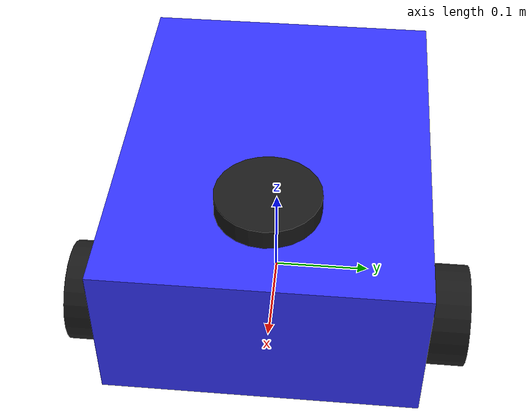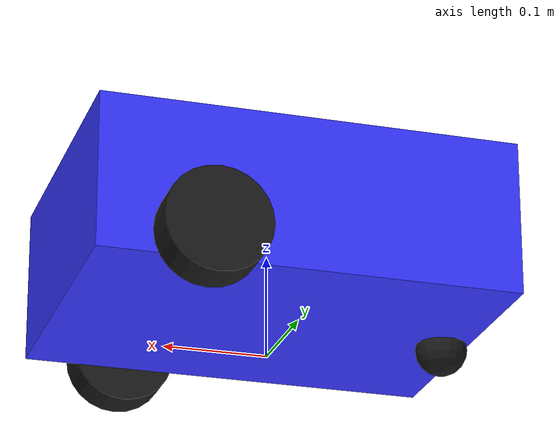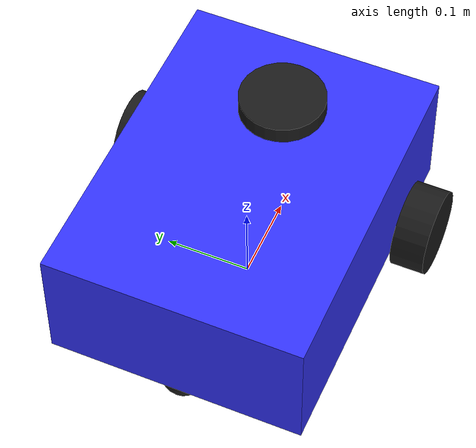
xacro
<?xml version="1.0"?>
<robot xmlns:xacro="http://www.ros.org/wiki/xacro" name="mobile_robot">

  <xacro:arg name="extra_controllers" default=""/>

  <!-- ==================== PROPERTIES ==================== -->
  <!-- Chassis dimensions (meters) -->
  <xacro:property name="base_width"  value="0.3"/>
  <xacro:property name="base_length" value="0.4"/>
  <xacro:property name="base_height" value="0.15"/>

  <!-- Wheel dimensions and placement -->
  <xacro:property name="wheel_radius" value="0.05"/>
  <xacro:property name="wheel_width"  value="0.04"/>
  <xacro:property name="wheel_ygap"   value="0.175"/> <!-- distance from center -->
  <xacro:property name="wheel_zoff"   value="0.05"/>  <!-- wheel axis height = wheel_radius (touch ground) -->
  <xacro:property name="wheel_xoff"   value="0.1"/>   <!-- forward offset -->

  <!-- Caster derived size -->
  <xacro:property name="caster_radius" value="${wheel_radius/2}"/>

  <!-- ==================== MATERIALS ==================== -->
  <material name="blue">
    <color rgba="0.2 0.2 1 1"/>
  </material>
  <material name="black">
    <color rgba="0.1 0.1 0.1 1"/>
  </material>

  <!-- ==================== LINKS ==================== -->
  <!-- base_link: root reference frame. KDL requires no inertia on root link. -->
  <link name="base_link"/>

  <!-- chassis: main body box -->
  <link name="chassis">
    <visual>
      <!-- Lift visual so bottom sits at base_link z=0 -->
      <origin xyz="0 0 ${base_height/2}" rpy="0 0 0"/>
      <geometry>
        <box size="${base_length} ${base_width} ${base_height}"/>
      </geometry>
      <material name="blue"/>
    </visual>
    <collision>
      <origin xyz="0 0 ${base_height/2}" rpy="0 0 0"/>
      <geometry>
        <box size="${base_length} ${base_width} ${base_height}"/>
      </geometry>
    </collision>
    <inertial>
      <origin xyz="0 0 ${base_height/2}" rpy="0 0 0"/>
      <mass value="2.0"/>
      <inertia ixx="0.02" ixy="0" ixz="0" iyy="0.02" iyz="0" izz="0.02"/>
    </inertial>
  </link>

  <!-- caster_wheel: small sphere at rear, slides on ground -->
  <link name="caster_wheel">
    <visual>
      <geometry>
        <sphere radius="${caster_radius}"/>
      </geometry>
      <material name="black"/>
    </visual>
    <collision>
      <geometry>
        <sphere radius="${caster_radius}"/>
      </geometry>
    </collision>
    <inertial>
      <mass value="0.1"/>
      <inertia ixx="0.0001" ixy="0" ixz="0" iyy="0.0001" iyz="0" izz="0.0001"/>
    </inertial>
  </link>

  <!-- ==================== JOINTS ==================== -->
  <joint name="chassis_joint" type="fixed">
    <parent link="base_link"/>
    <child link="chassis"/>
    <!-- Raise chassis to give 3cm of ground clearance -->
    <origin xyz="0 0 0.03" rpy="0 0 0"/>
  </joint>

  <!-- caster fixed at rear edge of chassis, dropped to compensate for ground clearance -->
  <joint name="caster_wheel_joint" type="fixed">
    <parent link="chassis"/>
    <child link="caster_wheel"/>
    <origin xyz="${-base_length/2 + caster_radius} 0 ${caster_radius - 0.03}" rpy="0 0 0"/>
  </joint>

  <!-- ==================== WHEEL MACRO ==================== -->
  <!-- Reusable wheel template (params: prefix=left|right, y_reflect=±1) -->
  <xacro:macro name="wheel" params="prefix y_reflect">
    <link name="${prefix}_wheel">
      <visual>
        <!-- Rotate cylinder to lie flat (cylinder default along Z, rotate to Y) -->
        <origin xyz="0 0 0" rpy="${pi/2} 0 0"/>
        <geometry>
          <cylinder radius="${wheel_radius}" length="${wheel_width}"/>
        </geometry>
        <material name="black"/>
      </visual>
      <collision>
        <origin xyz="0 0 0" rpy="${pi/2} 0 0"/>
        <geometry>
          <sphere radius="${wheel_radius}"/>
        </geometry>
      </collision>
      <inertial>
        <mass value="0.5"/>
        <inertia ixx="0.001" ixy="0" ixz="0" iyy="0.001" iyz="0" izz="0.001"/>
      </inertial>
    </link>

    <!-- Continuous joint: unlimited rotation around Y-axis -->
    <joint name="${prefix}_wheel_joint" type="continuous">
      <parent link="base_link"/>
      <child link="${prefix}_wheel"/>
      <origin xyz="${wheel_xoff} ${y_reflect * wheel_ygap} ${wheel_zoff}" rpy="0 0 0"/>
      <axis xyz="0 1 0"/>
      <dynamics damping="0.0" friction="0.0"/>
      <limit effort="10" velocity="10"/>
    </joint>
  </xacro:macro>

  <!-- Instantiate left and right wheels -->
  <xacro:wheel prefix="left"  y_reflect="1" />
  <xacro:wheel prefix="right" y_reflect="-1" />

  <!-- ==================== LIDAR SENSOR ==================== -->
  <!-- Physical representation of the LiDAR puck mounted on top of chassis -->
  <link name="laser_frame">
    <visual>
      <geometry>
        <cylinder radius="0.05" length="0.04"/>
      </geometry>
      <material name="black"/>
    </visual>
  </link>

  <!-- Fixed joint: LiDAR sits on top of chassis near the front -->
  <joint name="laser_joint" type="fixed">
    <parent link="chassis"/>
    <child link="laser_frame"/>
    <!-- x=0.1 (front), z=base_height (top surface of chassis) -->
    <origin xyz="0.1 0 ${base_height}" rpy="0 0 0"/>
  </joint>

  <!-- ==================== ROS2 CONTROL ==================== -->
  <!-- Hardware interface: Gazebo plugin handles joint control and state publishing -->
  <ros2_control name="GazeboSystem" type="system">
    <hardware>
      <plugin>gz_ros2_control/GazeboSimSystem</plugin>
    </hardware>

    <!-- Left wheel: velocity control + odometry feedback -->
    <joint name="left_wheel_joint">
      <command_interface name="velocity">
        <param name="min">-10</param>
        <param name="max">10</param>
      </command_interface>
      <state_interface name="velocity"/>
      <state_interface name="position"/>
    </joint>

    <!-- Right wheel: velocity control + odometry feedback -->
    <joint name="right_wheel_joint">
      <command_interface name="velocity">
        <param name="min">-10</param>
        <param name="max">10</param>
      </command_interface>
      <state_interface name="velocity"/>
      <state_interface name="position"/>
    </joint>
  </ros2_control>

  <!-- ==================== GAZEBO MATERIALS & FRICTION ==================== -->

  <gazebo reference="chassis">
    <visual>
      <material>
        <ambient>0.2 0.2 1 1</ambient>
        <diffuse>0.2 0.2 1 1</diffuse>
      </material>
    </visual>
  </gazebo>

  <gazebo reference="caster_wheel">
    <visual>
      <material>
        <ambient>0.1 0.1 0.1 1</ambient>
        <diffuse>0.1 0.1 0.1 1</diffuse>
      </material>
    </visual>
    <!-- Low friction so caster slides without resistance -->
    <mu1>0.001</mu1>
    <mu2>0.001</mu2>
  </gazebo>

  <gazebo reference="left_wheel">
    <visual>
      <material>
        <ambient>0.1 0.1 0.1 1</ambient>
        <diffuse>0.1 0.1 0.1 1</diffuse>
      </material>
    </visual>
    <!-- High friction for traction -->
    <mu1>1.0</mu1>
    <mu2>1.0</mu2>
  </gazebo>

  <gazebo reference="right_wheel">
    <visual>
      <material>
        <ambient>0.1 0.1 0.1 1</ambient>
        <diffuse>0.1 0.1 0.1 1</diffuse>
      </material>
    </visual>
    <mu1>1.0</mu1>
    <mu2>1.0</mu2>
  </gazebo>

  <!-- Load ros2_control plugin: bridges Gazebo Harmonic physics with ROS 2 controllers -->
  <gazebo>
    <plugin filename="gz_ros2_control-system" name="gz_ros2_control::GazeboSimROS2ControlPlugin">
      <parameters>$(find mobile_description)/config/robot/my_controllers.yaml</parameters>
      <xacro:if value="${'$(arg extra_controllers)' != ''}">
        <parameters>$(arg extra_controllers)</parameters>
      </xacro:if>
    </plugin>
  </gazebo>

  <!-- ==================== LIDAR PLUGIN ==================== -->
  <gazebo reference="laser_frame">
    <sensor name="laser" type="gpu_lidar">
      <pose>0 0 0 0 0 0</pose>
      <topic>/scan</topic>
      <update_rate>10</update_rate>
      <always_on>true</always_on>
      <visualize>true</visualize>
      <gz_frame_id>laser_frame</gz_frame_id>

      <lidar>
        <scan>
          <horizontal>
            <samples>360</samples>
            <resolution>1</resolution>
            <min_angle>-3.14159</min_angle>
            <max_angle>3.14159</max_angle>
          </horizontal>
        </scan>
        <range>
          <min>0.3</min>
          <max>12.0</max>
          <resolution>0.01</resolution>
        </range>
        <noise>
          <type>gaussian</type>
          <mean>0.0</mean>
          <stddev>0.01</stddev>
        </noise>
      </lidar>
    </sensor>
  </gazebo>
</robot>
